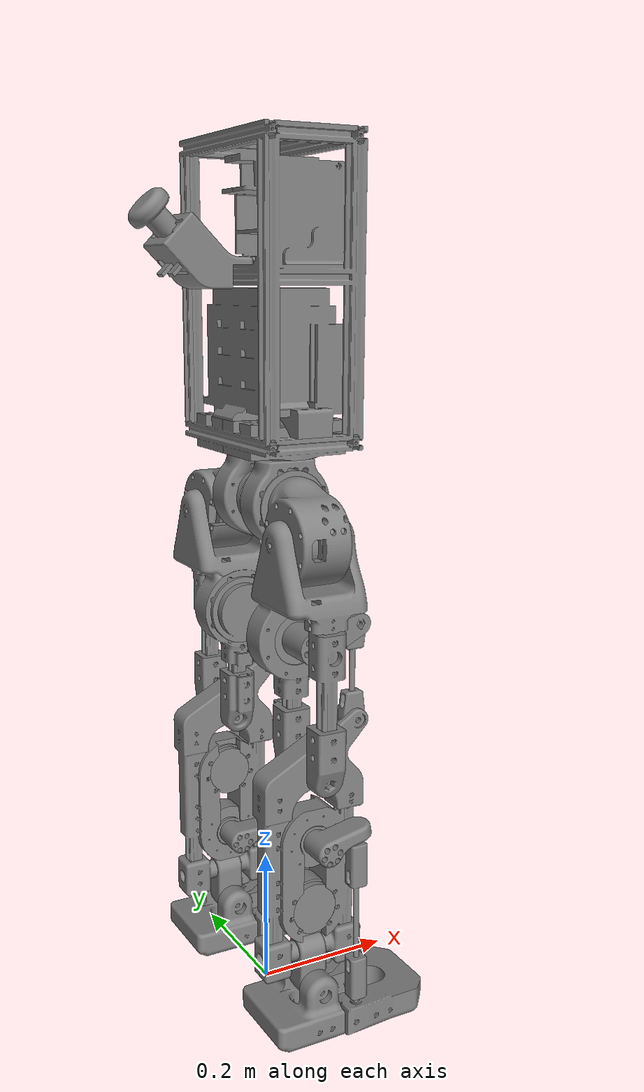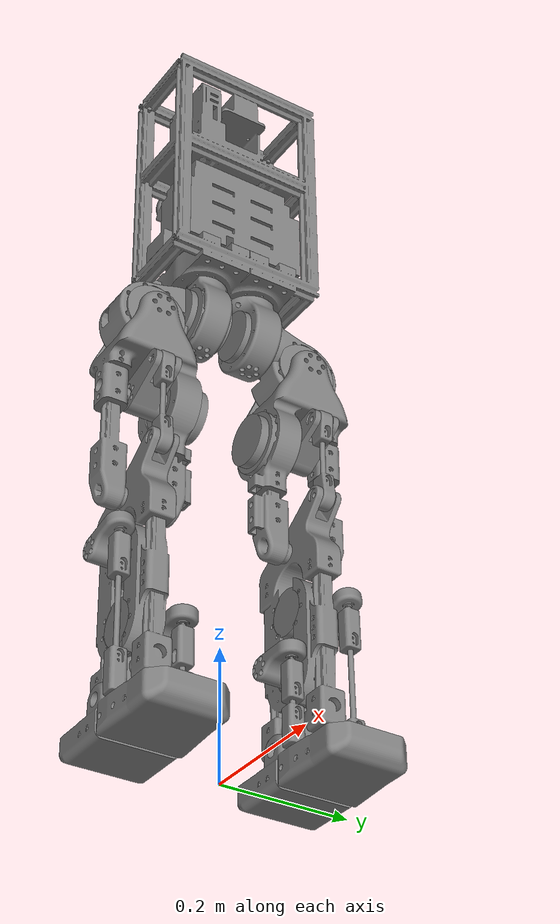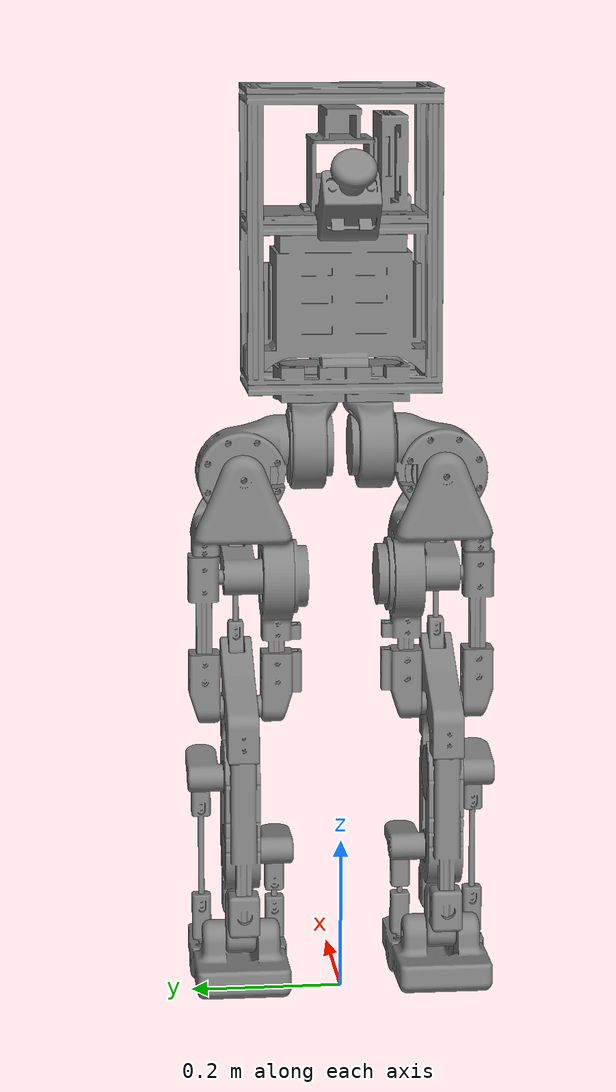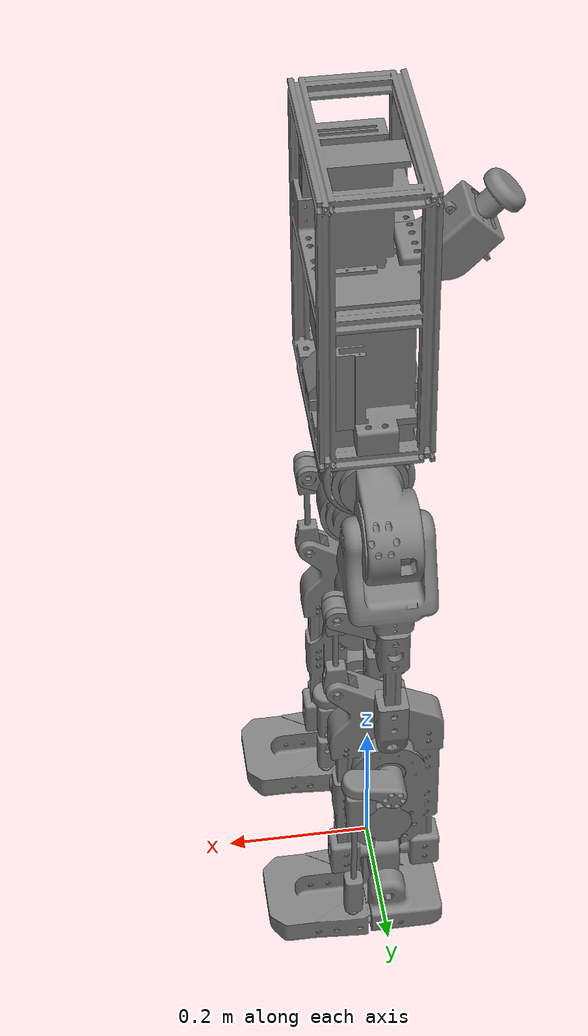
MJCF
<?xml version="1.0"?>
<mujoco model="robonex_edu">
  <compiler angle="radian" meshdir="../../../meshes" autolimits="true"/>
  <option timestep="0.001" integrator="implicitfast" cone="elliptic" impratio="10"/>

  <default>
    <joint damping="0.01" armature="0"/>
    <default class="passive">
      <joint damping="0.01" armature="0"/>
    </default>
    <default class="act">
      <joint armature="0"/>
    </default>
    <default class="visual">
      <geom group="2" contype="0" conaffinity="0" density="0"/>
    </default>
    <default class="collision">
      <geom group="3" contype="1" conaffinity="1" condim="3" density="0" rgba="0.6 0.6 0.6 0.4" solref="0.002 1" solimp="0.99 0.9999 0.0001"/>
    </default>
    <default class="motor">
      <position kp="40" kv="2"/>
    </default>
  </default>

  <asset>
    <mesh name="base_link" file="base_link.stl" scale="0.001 0.001 0.001"/>
    <mesh name="battery_link" file="battery_link.stl" scale="0.001 0.001 0.001"/>
    <mesh name="estop_link" file="estop_link.stl" scale="0.001 0.001 0.001"/>
    <mesh name="l_ankle_coupler_link_a" file="l_ankle_coupler_link_a.stl" scale="0.001 0.001 0.001"/>
    <mesh name="l_ankle_coupler_link_b" file="l_ankle_coupler_link_b.stl" scale="0.001 0.001 0.001"/>
    <mesh name="l_ankle_crank_link_a" file="l_ankle_crank_link_a.stl" scale="0.001 0.001 0.001"/>
    <mesh name="l_ankle_crank_link_b" file="l_ankle_crank_link_b.stl" scale="0.001 0.001 0.001"/>
    <mesh name="l_ankle_link" file="l_ankle_link.stl" scale="0.001 0.001 0.001"/>
    <mesh name="l_foot" file="l_foot.stl" scale="0.001 0.001 0.001"/>
    <mesh name="l_hip_pitch_link" file="l_hip_pitch_link.stl" scale="0.001 0.001 0.001"/>
    <mesh name="l_hip_roll_link" file="l_hip_roll_link.stl" scale="0.001 0.001 0.001"/>
    <mesh name="l_hip_yaw_link" file="l_hip_yaw_link.stl" scale="0.001 0.001 0.001"/>
    <mesh name="l_knee_coupler_link" file="l_knee_coupler_link.stl" scale="0.001 0.001 0.001"/>
    <mesh name="l_knee_crank_link" file="l_knee_crank_link.stl" scale="0.001 0.001 0.001"/>
    <mesh name="l_knee_link" file="l_knee_link.stl" scale="0.001 0.001 0.001"/>
    <mesh name="r_ankle_coupler_link_a" file="r_ankle_coupler_link_a.stl" scale="0.001 0.001 0.001"/>
    <mesh name="r_ankle_coupler_link_b" file="r_ankle_coupler_link_b.stl" scale="0.001 0.001 0.001"/>
    <mesh name="r_ankle_crank_link_a" file="r_ankle_crank_link_a.stl" scale="0.001 0.001 0.001"/>
    <mesh name="r_ankle_crank_link_b" file="r_ankle_crank_link_b.stl" scale="0.001 0.001 0.001"/>
    <mesh name="r_ankle_link" file="r_ankle_link.stl" scale="0.001 0.001 0.001"/>
    <mesh name="r_foot" file="r_foot.stl" scale="0.001 0.001 0.001"/>
    <mesh name="r_hip_pitch_link" file="r_hip_pitch_link.stl" scale="0.001 0.001 0.001"/>
    <mesh name="r_hip_roll_link" file="r_hip_roll_link.stl" scale="0.001 0.001 0.001"/>
    <mesh name="r_hip_yaw_link" file="r_hip_yaw_link.stl" scale="0.001 0.001 0.001"/>
    <mesh name="r_knee_coupler_link" file="r_knee_coupler_link.stl" scale="0.001 0.001 0.001"/>
    <mesh name="r_knee_crank_link" file="r_knee_crank_link.stl" scale="0.001 0.001 0.001"/>
    <mesh name="r_knee_link" file="r_knee_link.stl" scale="0.001 0.001 0.001"/>
    <mesh name="rs02_l_ankle_a" file="rs02_l_ankle_a.stl" scale="0.001 0.001 0.001"/>
    <mesh name="rs02_l_ankle_b" file="rs02_l_ankle_b.stl" scale="0.001 0.001 0.001"/>
    <mesh name="rs02_l_hip_yaw" file="rs02_l_hip_yaw.stl" scale="0.001 0.001 0.001"/>
    <mesh name="rs02_r_ankle_a" file="rs02_r_ankle_a.stl" scale="0.001 0.001 0.001"/>
    <mesh name="rs02_r_ankle_b" file="rs02_r_ankle_b.stl" scale="0.001 0.001 0.001"/>
    <mesh name="rs02_r_hip_yaw" file="rs02_r_hip_yaw.stl" scale="0.001 0.001 0.001"/>
    <mesh name="rs03_l_hip_pitch" file="rs03_l_hip_pitch.stl" scale="0.001 0.001 0.001"/>
    <mesh name="rs03_l_hip_roll" file="rs03_l_hip_roll.stl" scale="0.001 0.001 0.001"/>
    <mesh name="rs03_l_knee" file="rs03_l_knee.stl" scale="0.001 0.001 0.001"/>
    <mesh name="rs03_r_hip_pitch" file="rs03_r_hip_pitch.stl" scale="0.001 0.001 0.001"/>
    <mesh name="rs03_r_hip_roll" file="rs03_r_hip_roll.stl" scale="0.001 0.001 0.001"/>
    <mesh name="rs03_r_knee" file="rs03_r_knee.stl" scale="0.001 0.001 0.001"/>
  </asset>

  <worldbody>
    <body name="base_link" pos="0 0 0.9549">
      <freejoint name="root"/>
      <inertial pos="0.013148 -0.005915 -0.005744" mass="3.6769" fullinertia="0.08826882 0.0776718 0.02335333 0.00038825 -0.00152143 0.00319883"/>
      <geom type="mesh" mesh="base_link" pos="0 0 0" class="visual"/>
      <geom type="mesh" mesh="base_link" pos="0 0 0" class="collision"/>
      <geom type="mesh" mesh="rs02_l_hip_yaw" pos="0 0 0" class="visual"/>
      <geom type="mesh" mesh="rs02_l_hip_yaw" pos="0 0 0" class="collision"/>
      <geom type="mesh" mesh="rs02_r_hip_yaw" pos="0 0 0" class="visual"/>
      <geom type="mesh" mesh="rs02_r_hip_yaw" pos="0 0 0" class="collision"/>
      <body name="battery_link" pos="0.01087 0.000164 -0.028358">
        <inertial pos="0 0 0" mass="3.88194" fullinertia="0.02067478 0.01195105 0.01506089 4.6e-07 9.219e-05 6.8e-07"/>
        <geom type="mesh" mesh="battery_link" pos="0 0 0" class="visual"/>
        <geom type="mesh" mesh="battery_link" pos="0 0 0" class="collision"/>
      </body>
      <body name="estop_link" pos="-0.10218 0.00016 0.103793">
        <inertial pos="0 0 0" mass="0.603" fullinertia="0.000688 0.00112195 0.00091076 -1e-08 0.00038452 -2e-08"/>
        <geom type="mesh" mesh="estop_link" pos="0 0 0" class="visual"/>
        <geom type="mesh" mesh="estop_link" pos="0 0 0" class="collision"/>
      </body>
      <body name="l_hip_yaw_link" pos="0.009587 0.043073 -0.157994">
        <joint name="l_hip_yaw_joint" type="hinge" axis="0 0 1" range="-0.837758 0.837758" armature="0.0042" frictionloss="0" damping="0" class="act"/>
        <inertial pos="-3.5e-05 0.00147 -0.06017" mass="1.106" fullinertia="0.00125136 0.00173437 0.00116061 -7.5e-07 -7.6e-07 1.711e-05"/>
        <geom type="mesh" mesh="l_hip_yaw_link" pos="0 0 0" class="visual"/>
        <geom type="mesh" mesh="l_hip_yaw_link" pos="0 0 0" class="collision"/>
        <geom type="mesh" mesh="rs03_l_hip_pitch" pos="0 0 0" class="visual"/>
        <geom type="mesh" mesh="rs03_l_hip_pitch" pos="0 0 0" class="collision"/>
        <body name="l_hip_pitch_link" pos="2e-06 0.02575 -0.062">
          <joint name="l_hip_pitch_joint" type="hinge" axis="0 -1 0" range="-1.65806 1.65806" armature="0.02" frictionloss="0" damping="0" class="act"/>
          <inertial pos="-0.005311 0.060404 -0.031667" mass="1.23365" fullinertia="0.00206779 0.00158385 0.00150648 2.212e-05 -1.269e-05 0.00013358"/>
          <geom type="mesh" mesh="l_hip_pitch_link" pos="0 0 0" class="visual"/>
          <geom type="mesh" mesh="l_hip_pitch_link" pos="0 0 0" class="collision"/>
          <geom type="mesh" mesh="rs03_l_hip_roll" pos="0 0 0" class="visual"/>
          <geom type="mesh" mesh="rs03_l_hip_roll" pos="0 0 0" class="collision"/>
          <body name="l_hip_roll_link" pos="0.0225 0.062699 -0.034">
            <joint name="l_hip_roll_joint" type="hinge" axis="-1 0 0" range="-2.0944 0.174533" armature="0.02" frictionloss="0" damping="0" class="act"/>
            <inertial pos="-0.034697 -0.026836 -0.13245" mass="1.8519" fullinertia="0.01217665 0.01081817 0.00448357 -1.267e-05 -1.688e-05 -0.0002802"/>
            <geom type="mesh" mesh="l_hip_roll_link" pos="0 0 0" class="visual"/>
            <geom type="mesh" mesh="l_hip_roll_link" pos="0 0 0" class="collision"/>
            <geom type="mesh" mesh="rs03_l_knee" pos="0 0 0" class="visual"/>
            <geom type="mesh" mesh="rs03_l_knee" pos="0 0 0" class="collision"/>
            <body name="l_knee_link" pos="-0.034799 0.0029 -0.312746">
              <joint name="l_knee_joint" type="hinge" axis="0 -1 0" range="-3.14159 3.14159" class="passive"/>
              <inertial pos="-0.000393 -6.5e-05 -0.119777" mass="2.30694" fullinertia="0.0190676 0.02201849 0.00364596 -3.08e-06 -0.00067757 -4.475e-05"/>
              <geom type="mesh" mesh="l_knee_link" pos="0 0 0" class="visual"/>
              <geom type="mesh" mesh="l_knee_link" pos="0 0 0" class="collision"/>
              <geom type="mesh" mesh="rs02_l_ankle_a" pos="0 0 0" class="visual"/>
              <geom type="mesh" mesh="rs02_l_ankle_a" pos="0 0 0" class="collision"/>
              <geom type="mesh" mesh="rs02_l_ankle_b" pos="0 0 0" class="visual"/>
              <geom type="mesh" mesh="rs02_l_ankle_b" pos="0 0 0" class="collision"/>
              <body name="l_ankle_crank_link_a" pos="-0.001915 0.0229 -0.09521">
                <joint name="l_ankle_upper_joint" type="hinge" axis="0 -1 0" range="-0.279253 0.872665" armature="0.0042" frictionloss="0" damping="0" class="act"/>
                <inertial pos="0.02027 0.024517 0.008498" mass="0.0977" fullinertia="2.725e-05 6.053e-05 6.414e-05 -3.53e-06 -1.569e-05 -1.48e-06"/>
                <geom type="mesh" mesh="l_ankle_crank_link_a" pos="0 0 0" class="visual"/>
                <geom type="mesh" mesh="l_ankle_crank_link_a" pos="0 0 0" class="collision"/>
                <body name="l_ankle_coupler_link_b" pos="0.048892 0.0263 0.010482">
                  <joint name="l_ankle_coupler_joint_b_x" type="hinge" axis="1 0 0" range="-0.261799 0.261799" limited="true" solreflimit="0.004 1" solimplimit="0.99 0.9999 0.0001" class="passive"/>
                  <joint name="l_ankle_coupler_joint_b_y" type="hinge" axis="0 1 0" class="passive"/>
                  <joint name="l_ankle_coupler_joint_b_z" type="hinge" axis="0 0 1" range="-0.261799 0.261799" limited="true" solreflimit="0.004 1" solimplimit="0.99 0.9999 0.0001" class="passive"/>
                  <inertial pos="0.001566 2e-06 -0.128991" mass="0.0904" fullinertia="0.00070088 0.00070055 7.95e-06 0 8.41e-06 1e-08"/>
                  <geom type="mesh" mesh="l_ankle_coupler_link_b" pos="0 0 0" class="visual"/>
                  <geom type="mesh" mesh="l_ankle_coupler_link_b" pos="0 0 0" class="collision"/>
                </body>
              </body>
              <body name="l_ankle_crank_link_b" pos="-0.001915 -0.0231 -0.19621">
                <joint name="l_ankle_lower_joint" type="hinge" axis="0 1 0" range="-0.872665 0.523599" armature="0.0042" frictionloss="0" damping="0" class="act"/>
                <inertial pos="0.021458 -0.024511 0.004277" mass="0.0977" fullinertia="2.263e-05 6.044e-05 6.874e-05 3.75e-06 -7.24e-06 7.5e-07"/>
                <geom type="mesh" mesh="l_ankle_crank_link_b" pos="0 0 0" class="visual"/>
                <geom type="mesh" mesh="l_ankle_crank_link_b" pos="0 0 0" class="collision"/>
                <body name="l_ankle_coupler_link_a" pos="0.049971 -0.025702 0.000486">
                  <joint name="l_ankle_coupler_joint_a_x" type="hinge" axis="1 0 0" range="-0.261799 0.261799" limited="true" solreflimit="0.004 1" solimplimit="0.99 0.9999 0.0001" class="passive"/>
                  <joint name="l_ankle_coupler_joint_a_y" type="hinge" axis="0 1 0" class="passive"/>
                  <joint name="l_ankle_coupler_joint_a_z" type="hinge" axis="0 0 1" range="-0.261799 0.261799" limited="true" solreflimit="0.004 1" solimplimit="0.99 0.9999 0.0001" class="passive"/>
                  <inertial pos="0.001031 -0.000197 -0.073492" mass="0.0668" fullinertia="0.00010915 0.0001088 6.16e-06 0 1.45e-06 -2.8e-07"/>
                  <geom type="mesh" mesh="l_ankle_coupler_link_a" pos="0 0 0" class="visual"/>
                  <geom type="mesh" mesh="l_ankle_coupler_link_a" pos="0 0 0" class="collision"/>
                </body>
              </body>
              <body name="l_ankle_link" pos="0.000114 -2e-06 -0.26671">
                <joint name="l_ankle_roll_joint" type="hinge" axis="1 0 0" range="-3.14159 3.14159" class="passive"/>
                <inertial pos="0 1e-06 -0.024999" mass="0.106" fullinertia="7.201e-05 7.201e-05 2.63e-05 0 0 0"/>
                <geom type="mesh" mesh="l_ankle_link" pos="0 0 0" class="visual"/>
                <geom type="mesh" mesh="l_ankle_link" pos="0 0 0" class="collision"/>
                <body name="l_foot" pos="-4e-06 0.000276 -0.049999">
                  <joint name="l_ankle_pitch_joint" type="hinge" axis="0 -1 0" range="-3.14159 3.14159" class="passive"/>
                  <inertial pos="0.03641 -0.000198 -0.039754" mass="0.94" fullinertia="0.00171582 0.00492725 0.00597548 2.53e-06 0.0001807 -3e-06"/>
                  <geom type="mesh" mesh="l_foot" pos="0 0 0" class="visual"/>
                  <geom type="mesh" mesh="l_foot" pos="0 0 0" class="collision" friction="0.6 0.6 0.001"/>
                </body>
              </body>
            </body>
            <body name="l_knee_crank_link" pos="-0.034801 -0.0286 -0.13775">
              <joint name="l_knee_pitch_joint" type="hinge" axis="0 -1 0" range="-1.22173 0.174533" armature="0.02" frictionloss="0" damping="0" class="act"/>
              <inertial pos="0.019336 0.02899 0.007124" mass="0.17661" fullinertia="7.229e-05 0.00014259 0.00014113 -9.43e-06 -2.935e-05 -3.47e-06"/>
              <geom type="mesh" mesh="l_knee_crank_link" pos="0 0 0" class="visual"/>
              <geom type="mesh" mesh="l_knee_crank_link" pos="0 0 0" class="collision"/>
              <body name="l_knee_coupler_link" pos="0.065782 0.0315 0.023944">
                <joint name="l_knee_coupler_joint_a" type="hinge" axis="0 -1 0" range="-3.14159 3.14159" class="passive"/>
                <inertial pos="-3e-06 0 -0.067004" mass="0.0896" fullinertia="0.00028441 0.00028834 9.44e-06 0 0 0"/>
                <geom type="mesh" mesh="l_knee_coupler_link" pos="0 0 0" class="visual"/>
                <geom type="mesh" mesh="l_knee_coupler_link" pos="0 0 0" class="collision"/>
              </body>
            </body>
          </body>
        </body>
      </body>
      <body name="r_hip_yaw_link" pos="0.009587 -0.042927 -0.157994">
        <joint name="r_hip_yaw_joint" type="hinge" axis="0 0 1" range="-0.837758 0.837758" armature="0.0042" frictionloss="0" damping="0" class="act"/>
        <inertial pos="3.8e-05 -0.001471 -0.06017" mass="1.106" fullinertia="0.00125137 0.00173438 0.00116061 -7.6e-07 7.6e-07 -1.711e-05"/>
        <geom type="mesh" mesh="r_hip_yaw_link" pos="0 0 0" class="visual"/>
        <geom type="mesh" mesh="r_hip_yaw_link" pos="0 0 0" class="collision"/>
        <geom type="mesh" mesh="rs03_r_hip_pitch" pos="0 0 0" class="visual"/>
        <geom type="mesh" mesh="rs03_r_hip_pitch" pos="0 0 0" class="collision"/>
        <body name="r_hip_pitch_link" pos="1e-06 -0.02575 -0.062">
          <joint name="r_hip_pitch_joint" type="hinge" axis="0 1 0" range="-1.65806 1.65806" armature="0.02" frictionloss="0" damping="0" class="act"/>
          <inertial pos="-0.00531 -0.06034 -0.031667" mass="1.23365" fullinertia="0.00206741 0.00158385 0.0015061 -2.09e-05 -1.269e-05 -0.00013202"/>
          <geom type="mesh" mesh="r_hip_pitch_link" pos="0 0 0" class="visual"/>
          <geom type="mesh" mesh="r_hip_pitch_link" pos="0 0 0" class="collision"/>
          <geom type="mesh" mesh="rs03_r_hip_roll" pos="0 0 0" class="visual"/>
          <geom type="mesh" mesh="rs03_r_hip_roll" pos="0 0 0" class="collision"/>
          <body name="r_hip_roll_link" pos="0.022501 -0.0627 -0.034">
            <joint name="r_hip_roll_joint" type="hinge" axis="-1 0 0" range="-0.174533 2.0944" armature="0.02" frictionloss="0" damping="0" class="act"/>
            <inertial pos="-0.034697 0.026835 -0.132493" mass="1.8519" fullinertia="0.01217628 0.01081912 0.00448226 1.262e-05 -1.83e-05 0.00028324"/>
            <geom type="mesh" mesh="r_hip_roll_link" pos="0 0 0" class="visual"/>
            <geom type="mesh" mesh="r_hip_roll_link" pos="0 0 0" class="collision"/>
            <geom type="mesh" mesh="rs03_r_knee" pos="0 0 0" class="visual"/>
            <geom type="mesh" mesh="rs03_r_knee" pos="0 0 0" class="collision"/>
            <body name="r_knee_link" pos="-0.034799 -0.002899 -0.312746">
              <joint name="r_knee_joint" type="hinge" axis="0 1 0" range="-3.14159 3.14159" class="passive"/>
              <inertial pos="-0.000421 -2e-06 -0.11981" mass="2.30694" fullinertia="0.01906097 0.02200963 0.00364358 -1.11e-06 -0.00068132 3.501e-05"/>
              <geom type="mesh" mesh="r_knee_link" pos="0 0 0" class="visual"/>
              <geom type="mesh" mesh="r_knee_link" pos="0 0 0" class="collision"/>
              <geom type="mesh" mesh="rs02_r_ankle_a" pos="0 0 0" class="visual"/>
              <geom type="mesh" mesh="rs02_r_ankle_a" pos="0 0 0" class="collision"/>
              <geom type="mesh" mesh="rs02_r_ankle_b" pos="0 0 0" class="visual"/>
              <geom type="mesh" mesh="rs02_r_ankle_b" pos="0 0 0" class="collision"/>
              <body name="r_ankle_crank_link_a" pos="-0.001936 0.023 -0.196208">
                <joint name="r_ankle_lower_joint" type="hinge" axis="0 -1 0" range="-0.523599 0.872665" armature="0.0042" frictionloss="0" damping="0" class="act"/>
                <inertial pos="0.021561 0.024516 0.004269" mass="0.0977" fullinertia="2.257e-05 6.053e-05 6.881e-05 -3.76e-06 -7.2e-06 -7.4e-07"/>
                <geom type="mesh" mesh="r_ankle_crank_link_a" pos="0 0 0" class="visual"/>
                <geom type="mesh" mesh="r_ankle_crank_link_a" pos="0 0 0" class="collision"/>
                <body name="r_ankle_coupler_link_a" pos="0.050001 0.0263 0.000484">
                  <joint name="r_ankle_coupler_joint_a_x" type="hinge" axis="1 0 0" range="-0.261799 0.261799" limited="true" solreflimit="0.004 1" solimplimit="0.99 0.9999 0.0001" class="passive"/>
                  <joint name="r_ankle_coupler_joint_a_y" type="hinge" axis="0 1 0" class="passive"/>
                  <joint name="r_ankle_coupler_joint_a_z" type="hinge" axis="0 0 1" range="-0.261799 0.261799" limited="true" solreflimit="0.004 1" solimplimit="0.99 0.9999 0.0001" class="passive"/>
                  <inertial pos="0.001023 -5.1e-05 -0.073492" mass="0.0668" fullinertia="0.00010878 0.00010917 6.15e-06 -1e-08 1.43e-06 -7e-08"/>
                  <geom type="mesh" mesh="r_ankle_coupler_link_a" pos="0 0 0" class="visual"/>
                  <geom type="mesh" mesh="r_ankle_coupler_link_a" pos="0 0 0" class="collision"/>
                </body>
              </body>
              <body name="r_ankle_crank_link_b" pos="-0.001936 -0.023 -0.095208">
                <joint name="r_ankle_upper_joint" type="hinge" axis="0 1 0" range="-0.872665 0.279253" armature="0.0042" frictionloss="0" damping="0" class="act"/>
                <inertial pos="0.020168 -0.024512 0.008484" mass="0.0977" fullinertia="2.732e-05 6.044e-05 6.405e-05 3.52e-06 -1.57e-05 1.48e-06"/>
                <geom type="mesh" mesh="r_ankle_crank_link_b" pos="0 0 0" class="visual"/>
                <geom type="mesh" mesh="r_ankle_crank_link_b" pos="0 0 0" class="collision"/>
                <body name="r_ankle_coupler_link_b" pos="0.048862 -0.025702 0.010477">
                  <joint name="r_ankle_coupler_joint_b_x" type="hinge" axis="1 0 0" range="-0.261799 0.261799" limited="true" solreflimit="0.004 1" solimplimit="0.99 0.9999 0.0001" class="passive"/>
                  <joint name="r_ankle_coupler_joint_b_y" type="hinge" axis="0 1 0" class="passive"/>
                  <joint name="r_ankle_coupler_joint_b_z" type="hinge" axis="0 0 1" range="-0.261799 0.261799" limited="true" solreflimit="0.004 1" solimplimit="0.99 0.9999 0.0001" class="passive"/>
                  <inertial pos="0.001594 -0.000249 -0.12899" mass="0.0904" fullinertia="0.00070087 0.00070055 7.95e-06 2e-08 8.56e-06 -1.34e-06"/>
                  <geom type="mesh" mesh="r_ankle_coupler_link_b" pos="0 0 0" class="visual"/>
                  <geom type="mesh" mesh="r_ankle_coupler_link_b" pos="0 0 0" class="collision"/>
                </body>
              </body>
              <body name="r_ankle_link" pos="0.000114 -3e-06 -0.26671">
                <joint name="r_ankle_roll_joint" type="hinge" axis="1 0 0" range="-3.14159 3.14159" class="passive"/>
                <inertial pos="0 2e-06 -0.024999" mass="0.106" fullinertia="7.201e-05 7.201e-05 2.629e-05 0 0 0"/>
                <geom type="mesh" mesh="r_ankle_link" pos="0 0 0" class="visual"/>
                <geom type="mesh" mesh="r_ankle_link" pos="0 0 0" class="collision"/>
                <body name="r_foot" pos="-4e-06 0 -0.05">
                  <joint name="r_ankle_pitch_joint" type="hinge" axis="0 -1 0" range="-3.14159 3.14159" class="passive"/>
                  <inertial pos="0.036409 7.5e-05 -0.039753" mass="0.94" fullinertia="0.00171582 0.00492725 0.00597547 2.84e-06 0.00018073 -3.02e-06"/>
                  <geom type="mesh" mesh="r_foot" pos="0 0 0" class="visual"/>
                  <geom type="mesh" mesh="r_foot" pos="0 0 0" class="collision" friction="0.6 0.6 0.001"/>
                </body>
              </body>
            </body>
            <body name="r_knee_crank_link" pos="-0.034801 0.028601 -0.137749">
              <joint name="r_knee_pitch_joint" type="hinge" axis="0 1 0" range="-0.174533 1.22173" armature="0.02" frictionloss="0" damping="0" class="act"/>
              <inertial pos="0.019336 -0.028991 0.007123" mass="0.17661" fullinertia="7.229e-05 0.00014259 0.00014113 9.43e-06 -2.935e-05 3.47e-06"/>
              <geom type="mesh" mesh="r_knee_crank_link" pos="0 0 0" class="visual"/>
              <geom type="mesh" mesh="r_knee_crank_link" pos="0 0 0" class="collision"/>
              <body name="r_knee_coupler_link" pos="0.065782 -0.0315 0.023943">
                <joint name="r_knee_coupler_joint_a" type="hinge" axis="0 -1 0" range="-3.14159 3.14159" class="passive"/>
                <inertial pos="-3e-06 -1e-06 -0.067004" mass="0.0896" fullinertia="0.00028441 0.00028834 9.44e-06 0 0 0"/>
                <geom type="mesh" mesh="r_knee_coupler_link" pos="0 0 0" class="visual"/>
                <geom type="mesh" mesh="r_knee_coupler_link" pos="0 0 0" class="collision"/>
              </body>
            </body>
          </body>
        </body>
      </body>
    </body>
  </worldbody>

  <equality>
    <connect name="l_knee_coupler_joint_b_0" body1="l_knee_coupler_link" body2="l_knee_link" anchor="0 -0.01 -0.134" solref="0.004 1" solimp="0.99 0.9999 0.0001"/>
    <connect name="l_knee_coupler_joint_b_1" body1="l_knee_coupler_link" body2="l_knee_link" anchor="0 0.01 -0.134" solref="0.004 1" solimp="0.99 0.9999 0.0001"/>
    <connect name="r_knee_coupler_joint_b_0" body1="r_knee_coupler_link" body2="r_knee_link" anchor="0 0.01 -0.134" solref="0.004 1" solimp="0.99 0.9999 0.0001"/>
    <connect name="r_knee_coupler_joint_b_1" body1="r_knee_coupler_link" body2="r_knee_link" anchor="0 -0.01 -0.134" solref="0.004 1" solimp="0.99 0.9999 0.0001"/>
    <connect name="l_ankle_ball_c" body1="l_ankle_coupler_link_a" body2="l_foot" anchor="0.002064 -0.000394 -0.146985" solref="0.004 1" solimp="0.99 0.9999 0.0001"/>
    <connect name="l_ankle_ball_d" body1="l_ankle_coupler_link_b" body2="l_foot" anchor="0.003133 4e-06 -0.257981" solref="0.004 1" solimp="0.99 0.9999 0.0001"/>
    <connect name="r_ankle_ball_c" body1="r_ankle_coupler_link_a" body2="r_foot" anchor="0.002049 -0.0001 -0.146986" solref="0.004 1" solimp="0.99 0.9999 0.0001"/>
    <connect name="r_ankle_ball_d" body1="r_ankle_coupler_link_b" body2="r_foot" anchor="0.003188 -0.000498 -0.257979" solref="0.004 1" solimp="0.99 0.9999 0.0001"/>
  </equality>

  <contact>
    <exclude body1="base_link" body2="battery_link"/>
    <exclude body1="base_link" body2="estop_link"/>
    <exclude body1="base_link" body2="l_hip_pitch_link"/>
    <exclude body1="base_link" body2="l_hip_yaw_link"/>
    <exclude body1="base_link" body2="r_hip_pitch_link"/>
    <exclude body1="base_link" body2="r_hip_yaw_link"/>
    <exclude body1="battery_link" body2="estop_link"/>
    <exclude body1="battery_link" body2="l_hip_yaw_link"/>
    <exclude body1="battery_link" body2="r_hip_yaw_link"/>
    <exclude body1="estop_link" body2="l_hip_yaw_link"/>
    <exclude body1="estop_link" body2="r_hip_yaw_link"/>
    <exclude body1="l_ankle_coupler_link_a" body2="l_ankle_coupler_link_b"/>
    <exclude body1="l_ankle_coupler_link_a" body2="l_ankle_crank_link_b"/>
    <exclude body1="l_ankle_coupler_link_a" body2="l_ankle_link"/>
    <exclude body1="l_ankle_coupler_link_a" body2="l_foot"/>
    <exclude body1="l_ankle_coupler_link_a" body2="l_knee_link"/>
    <exclude body1="l_ankle_coupler_link_b" body2="l_ankle_crank_link_a"/>
    <exclude body1="l_ankle_coupler_link_b" body2="l_ankle_link"/>
    <exclude body1="l_ankle_coupler_link_b" body2="l_foot"/>
    <exclude body1="l_ankle_coupler_link_b" body2="l_knee_link"/>
    <exclude body1="l_ankle_crank_link_a" body2="l_ankle_crank_link_b"/>
    <exclude body1="l_ankle_crank_link_a" body2="l_ankle_link"/>
    <exclude body1="l_ankle_crank_link_a" body2="l_foot"/>
    <exclude body1="l_ankle_crank_link_a" body2="l_hip_roll_link"/>
    <exclude body1="l_ankle_crank_link_a" body2="l_knee_coupler_link"/>
    <exclude body1="l_ankle_crank_link_a" body2="l_knee_link"/>
    <exclude body1="l_ankle_crank_link_b" body2="l_ankle_link"/>
    <exclude body1="l_ankle_crank_link_b" body2="l_foot"/>
    <exclude body1="l_ankle_crank_link_b" body2="l_hip_roll_link"/>
    <exclude body1="l_ankle_crank_link_b" body2="l_knee_coupler_link"/>
    <exclude body1="l_ankle_crank_link_b" body2="l_knee_link"/>
    <exclude body1="l_ankle_link" body2="l_foot"/>
    <exclude body1="l_ankle_link" body2="l_hip_roll_link"/>
    <exclude body1="l_ankle_link" body2="l_knee_coupler_link"/>
    <exclude body1="l_ankle_link" body2="l_knee_link"/>
    <exclude body1="l_foot" body2="l_knee_link"/>
    <exclude body1="l_hip_pitch_link" body2="l_hip_roll_link"/>
    <exclude body1="l_hip_pitch_link" body2="l_hip_yaw_link"/>
    <exclude body1="l_hip_pitch_link" body2="l_knee_crank_link"/>
    <exclude body1="l_hip_pitch_link" body2="l_knee_link"/>
    <exclude body1="l_hip_roll_link" body2="l_hip_yaw_link"/>
    <exclude body1="l_hip_roll_link" body2="l_knee_coupler_link"/>
    <exclude body1="l_hip_roll_link" body2="l_knee_crank_link"/>
    <exclude body1="l_hip_roll_link" body2="l_knee_link"/>
    <exclude body1="l_hip_yaw_link" body2="r_hip_yaw_link"/>
    <exclude body1="l_knee_coupler_link" body2="l_knee_crank_link"/>
    <exclude body1="l_knee_coupler_link" body2="l_knee_link"/>
    <exclude body1="l_knee_crank_link" body2="l_knee_link"/>
    <exclude body1="r_ankle_coupler_link_a" body2="r_ankle_coupler_link_b"/>
    <exclude body1="r_ankle_coupler_link_a" body2="r_ankle_crank_link_a"/>
    <exclude body1="r_ankle_coupler_link_a" body2="r_ankle_link"/>
    <exclude body1="r_ankle_coupler_link_a" body2="r_foot"/>
    <exclude body1="r_ankle_coupler_link_a" body2="r_knee_link"/>
    <exclude body1="r_ankle_coupler_link_b" body2="r_ankle_crank_link_b"/>
    <exclude body1="r_ankle_coupler_link_b" body2="r_ankle_link"/>
    <exclude body1="r_ankle_coupler_link_b" body2="r_foot"/>
    <exclude body1="r_ankle_coupler_link_b" body2="r_knee_link"/>
    <exclude body1="r_ankle_crank_link_a" body2="r_ankle_crank_link_b"/>
    <exclude body1="r_ankle_crank_link_a" body2="r_ankle_link"/>
    <exclude body1="r_ankle_crank_link_a" body2="r_foot"/>
    <exclude body1="r_ankle_crank_link_a" body2="r_hip_roll_link"/>
    <exclude body1="r_ankle_crank_link_a" body2="r_knee_coupler_link"/>
    <exclude body1="r_ankle_crank_link_a" body2="r_knee_link"/>
    <exclude body1="r_ankle_crank_link_b" body2="r_ankle_link"/>
    <exclude body1="r_ankle_crank_link_b" body2="r_foot"/>
    <exclude body1="r_ankle_crank_link_b" body2="r_hip_roll_link"/>
    <exclude body1="r_ankle_crank_link_b" body2="r_knee_coupler_link"/>
    <exclude body1="r_ankle_crank_link_b" body2="r_knee_link"/>
    <exclude body1="r_ankle_link" body2="r_foot"/>
    <exclude body1="r_ankle_link" body2="r_hip_roll_link"/>
    <exclude body1="r_ankle_link" body2="r_knee_coupler_link"/>
    <exclude body1="r_ankle_link" body2="r_knee_link"/>
    <exclude body1="r_foot" body2="r_knee_link"/>
    <exclude body1="r_hip_pitch_link" body2="r_hip_roll_link"/>
    <exclude body1="r_hip_pitch_link" body2="r_hip_yaw_link"/>
    <exclude body1="r_hip_pitch_link" body2="r_knee_crank_link"/>
    <exclude body1="r_hip_pitch_link" body2="r_knee_link"/>
    <exclude body1="r_hip_roll_link" body2="r_hip_yaw_link"/>
    <exclude body1="r_hip_roll_link" body2="r_knee_coupler_link"/>
    <exclude body1="r_hip_roll_link" body2="r_knee_crank_link"/>
    <exclude body1="r_hip_roll_link" body2="r_knee_link"/>
    <exclude body1="r_knee_coupler_link" body2="r_knee_crank_link"/>
    <exclude body1="r_knee_coupler_link" body2="r_knee_link"/>
    <exclude body1="r_knee_crank_link" body2="r_knee_link"/>
  </contact>

  <actuator>
    <position name="l_hip_yaw" joint="l_hip_yaw_joint" ctrlrange="-0.837758 0.837758" forcerange="-17 17" kp="100" kv="2" class="motor"/>
    <position name="l_hip_pitch" joint="l_hip_pitch_joint" ctrlrange="-1.65806 1.65806" forcerange="-60 60" kp="100" kv="2" class="motor"/>
    <position name="l_hip_roll" joint="l_hip_roll_joint" ctrlrange="-2.0944 0.174533" forcerange="-60 60" kp="100" kv="2" class="motor"/>
    <position name="l_knee_pitch" joint="l_knee_pitch_joint" ctrlrange="-1.22173 0.174533" forcerange="-60 60" kp="150" kv="4" class="motor"/>
    <position name="l_ankle_upper" joint="l_ankle_upper_joint" ctrlrange="-0.279253 0.872665" forcerange="-17 17" kp="40" kv="2" class="motor"/>
    <position name="l_ankle_lower" joint="l_ankle_lower_joint" ctrlrange="-0.872665 0.523599" forcerange="-17 17" kp="40" kv="2" class="motor"/>
    <position name="r_hip_yaw" joint="r_hip_yaw_joint" ctrlrange="-0.837758 0.837758" forcerange="-17 17" kp="100" kv="2" class="motor"/>
    <position name="r_hip_pitch" joint="r_hip_pitch_joint" ctrlrange="-1.65806 1.65806" forcerange="-60 60" kp="100" kv="2" class="motor"/>
    <position name="r_hip_roll" joint="r_hip_roll_joint" ctrlrange="-0.174533 2.0944" forcerange="-60 60" kp="100" kv="2" class="motor"/>
    <position name="r_knee_pitch" joint="r_knee_pitch_joint" ctrlrange="-0.174533 1.22173" forcerange="-60 60" kp="150" kv="4" class="motor"/>
    <position name="r_ankle_lower" joint="r_ankle_lower_joint" ctrlrange="-0.523599 0.872665" forcerange="-17 17" kp="40" kv="2" class="motor"/>
    <position name="r_ankle_upper" joint="r_ankle_upper_joint" ctrlrange="-0.872665 0.279253" forcerange="-17 17" kp="40" kv="2" class="motor"/>
  </actuator>

  <sensor>
    <actuatorfrc name="l_hip_yaw_trq" actuator="l_hip_yaw"/>
    <actuatorfrc name="l_hip_pitch_trq" actuator="l_hip_pitch"/>
    <actuatorfrc name="l_hip_roll_trq" actuator="l_hip_roll"/>
    <actuatorfrc name="l_knee_pitch_trq" actuator="l_knee_pitch"/>
    <actuatorfrc name="l_ankle_upper_trq" actuator="l_ankle_upper"/>
    <actuatorfrc name="l_ankle_lower_trq" actuator="l_ankle_lower"/>
    <actuatorfrc name="r_hip_yaw_trq" actuator="r_hip_yaw"/>
    <actuatorfrc name="r_hip_pitch_trq" actuator="r_hip_pitch"/>
    <actuatorfrc name="r_hip_roll_trq" actuator="r_hip_roll"/>
    <actuatorfrc name="r_knee_pitch_trq" actuator="r_knee_pitch"/>
    <actuatorfrc name="r_ankle_lower_trq" actuator="r_ankle_lower"/>
    <actuatorfrc name="r_ankle_upper_trq" actuator="r_ankle_upper"/>
  </sensor>

  <keyframe>
    <key name="home" qpos="0 0 0.94226 1 0 0 0 0 0.1 0 -0.29669739 0.212557738 1.6087348e-05 0.18375353 3.04736663e-06 -0.203804891 3.46141733e-05 0.168073449 -0.000450036837 6.23677935e-05 0.196690826 -0.329865695 0.418809142 0 -0.1 0 0.296696424 0.203804891 2.98017462e-05 0.16807133 -0.000113924771 -0.212557738 2.05559853e-05 0.183758821 -0.00035446828 6.23131587e-05 0.196702805 0.329865695 0.418811258" ctrl="0 0.1 0 -0.329865695 0.212557738 -0.203804891 0 -0.1 0 0.329865695 0.203804891 -0.212557738"/>
  </keyframe>
</mujoco>
